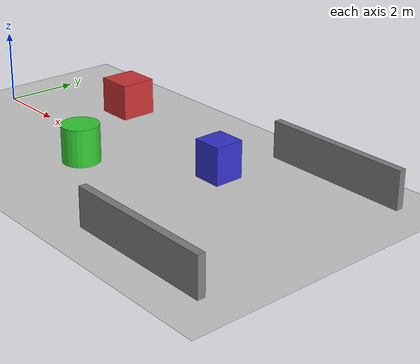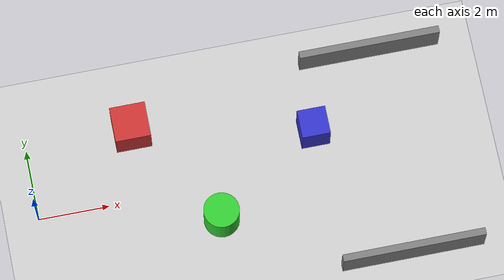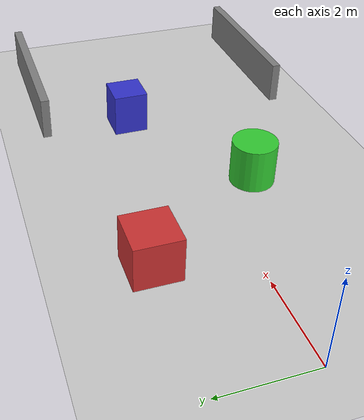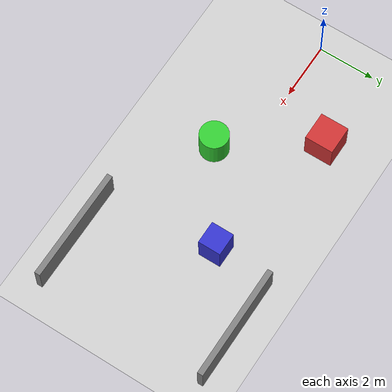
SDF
<?xml version="1.0" ?>
<sdf version="1.8">
  <world name="mppi_test_world">
    <!-- Physics settings -->
    <physics name="4ms" type="ignored">
      <max_step_size>0.004</max_step_size>
      <real_time_factor>1.0</real_time_factor>
      <real_time_update_rate>250</real_time_update_rate>
    </physics>

    <plugin
      filename="gz-sim-physics-system"
      name="gz::sim::systems::Physics">
    </plugin>
    <plugin
      filename="gz-sim-user-commands-system"
      name="gz::sim::systems::UserCommands">
    </plugin>
    <plugin
      filename="gz-sim-scene-broadcaster-system"
      name="gz::sim::systems::SceneBroadcaster">
    </plugin>
    <plugin
      filename="gz-sim-sensors-system"
      name="gz::sim::systems::Sensors">
      <render_engine>ogre2</render_engine>
    </plugin>

    <!-- Sun light -->
    <light type="directional" name="sun">
      <cast_shadows>true</cast_shadows>
      <pose>0 0 10 0 0 0</pose>
      <diffuse>0.8 0.8 0.8 1</diffuse>
      <specular>0.2 0.2 0.2 1</specular>
      <attenuation>
        <range>1000</range>
        <constant>0.9</constant>
        <linear>0.01</linear>
        <quadratic>0.001</quadratic>
      </attenuation>
      <direction>-0.5 0.1 -0.9</direction>
    </light>

    <!-- Ground plane -->
    <model name="ground_plane">
      <static>true</static>
      <link name="link">
        <collision name="collision">
          <geometry>
            <plane>
              <normal>0 0 1</normal>
              <size>100 100</size>
            </plane>
          </geometry>
        </collision>
        <visual name="visual">
          <geometry>
            <plane>
              <normal>0 0 1</normal>
              <size>100 100</size>
            </plane>
          </geometry>
          <material>
            <ambient>0.8 0.8 0.8 1</ambient>
            <diffuse>0.8 0.8 0.8 1</diffuse>
            <specular>0.8 0.8 0.8 1</specular>
          </material>
        </visual>
      </link>
    </model>

    <!-- Test obstacles for MPPI -->

    <!-- Obstacle 1: Static box near start -->
    <model name="obstacle_1">
      <static>true</static>
      <pose>3 2 0.5 0 0 0</pose>
      <link name="link">
        <collision name="collision">
          <geometry>
            <box>
              <size>1.0 1.0 1.0</size>
            </box>
          </geometry>
        </collision>
        <visual name="visual">
          <geometry>
            <box>
              <size>1.0 1.0 1.0</size>
            </box>
          </geometry>
          <material>
            <ambient>0.8 0.2 0.2 1.0</ambient>
            <diffuse>0.8 0.2 0.2 1.0</diffuse>
          </material>
        </visual>
      </link>
    </model>

    <!-- Obstacle 2: Static cylinder in middle -->
    <model name="obstacle_2">
      <static>true</static>
      <pose>5 -1 0.5 0 0 0</pose>
      <link name="link">
        <collision name="collision">
          <geometry>
            <cylinder>
              <radius>0.5</radius>
              <length>1.0</length>
            </cylinder>
          </geometry>
        </collision>
        <visual name="visual">
          <geometry>
            <cylinder>
              <radius>0.5</radius>
              <length>1.0</length>
            </cylinder>
          </geometry>
          <material>
            <ambient>0.2 0.8 0.2 1.0</ambient>
            <diffuse>0.2 0.8 0.2 1.0</diffuse>
          </material>
        </visual>
      </link>
    </model>

    <!-- Obstacle 3: Static box far -->
    <model name="obstacle_3">
      <static>true</static>
      <pose>8 1 0.5 0 0 0</pose>
      <link name="link">
        <collision name="collision">
          <geometry>
            <box>
              <size>0.8 0.8 1.0</size>
            </box>
          </geometry>
        </collision>
        <visual name="visual">
          <geometry>
            <box>
              <size>0.8 0.8 1.0</size>
            </box>
          </geometry>
          <material>
            <ambient>0.2 0.2 0.8 1.0</ambient>
            <diffuse>0.2 0.2 0.8 1.0</diffuse>
          </material>
        </visual>
      </link>
    </model>

    <!-- Wall obstacles for corridor -->
    <model name="wall_left">
      <static>true</static>
      <pose>10 3 0.5 0 0 0</pose>
      <link name="link">
        <collision name="collision">
          <geometry>
            <box>
              <size>4.0 0.2 1.0</size>
            </box>
          </geometry>
        </collision>
        <visual name="visual">
          <geometry>
            <box>
              <size>4.0 0.2 1.0</size>
            </box>
          </geometry>
          <material>
            <ambient>0.5 0.5 0.5 1.0</ambient>
            <diffuse>0.5 0.5 0.5 1.0</diffuse>
          </material>
        </visual>
      </link>
    </model>

    <model name="wall_right">
      <static>true</static>
      <pose>10 -3 0.5 0 0 0</pose>
      <link name="link">
        <collision name="collision">
          <geometry>
            <box>
              <size>4.0 0.2 1.0</size>
            </box>
          </geometry>
        </collision>
        <visual name="visual">
          <geometry>
            <box>
              <size>4.0 0.2 1.0</size>
            </box>
          </geometry>
          <material>
            <ambient>0.5 0.5 0.5 1.0</ambient>
            <diffuse>0.5 0.5 0.5 1.0</diffuse>
          </material>
        </visual>
      </link>
    </model>

  </world>
</sdf>
